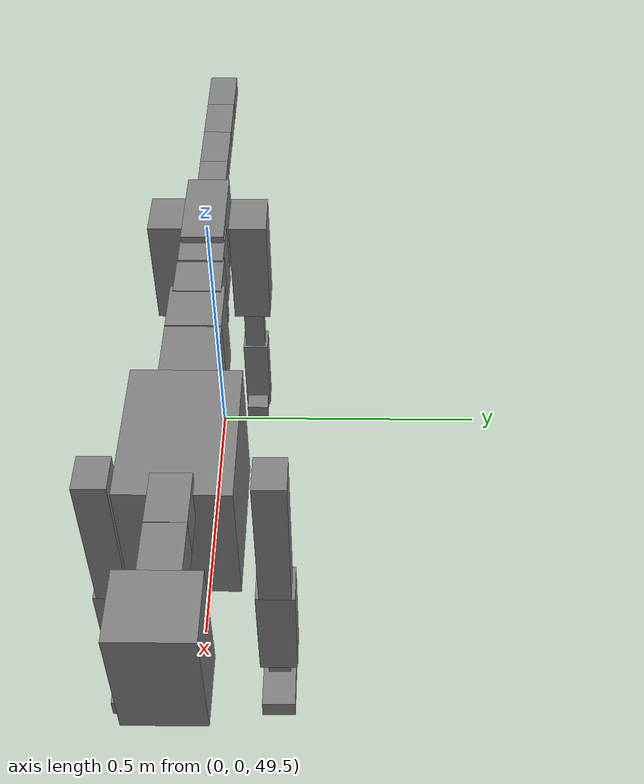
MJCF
<mujoco model="dog">

    <default>
        <joint armature="0.02" stiffness="1" damping="0.2" limited="true"/>
        <geom condim="3" friction="1 0.05 0.05" margin="0.01"/>
        <motor ctrllimited="true" ctrlrange="-1.0 1.0" forcelimited="true" gear="50"/>
    </default>

    <compiler inertiafromgeom="true" angle="radian"/>

    <option timestep="0.016" iterations="50" tolerance="1e-10" solver="Newton" jacobian="dense" cone="pyramidal"/>

    <size nconmax="20000" njmax="60000" nstack="5000000"/>
    <visual>
        <map force="0.1" zfar="30"/>
        <rgba haze="0.15 0.25 0.35 1"/>
        <quality shadowsize="2048"/>
        <global offwidth="800" offheight="800"/>
    </visual>

    <asset>
        <texture type="skybox" builtin="gradient" rgb1="0.3 0.5 0.7" rgb2="0 0 0" width="512" height="512"/>
        <texture name="texplane" type="2d" builtin="checker" rgb1=".2 .3 .4" rgb2=".1 0.15 0.2" width="512" height="512"
                 mark="cross" markrgb=".8 .8 .8"/>
        <texture name="texgeom" type="cube" builtin="flat" mark="cross" width="127" height="1278" rgb1="0.8 0.6 0.4"
                 rgb2="0.8 0.6 0.4" markrgb="1 1 1" random="0.01"/>

        <material name="matplane" reflectance="0.3" texture="texplane" texrepeat="1 1" texuniform="true"/>
        <material name="matgeom" texture="texgeom" texuniform="true" rgba="0.8 0.6 .4 1"/>
    </asset>

    <worldbody>
        <geom name="floor" pos="0 0 0" size="0 0 .25" type="plane" material="matplane" condim="3"/>

        <light directional="false" diffuse=".2 .2 .2" specular="0 0 0" pos="0 0 5" dir="0 0 -1" castshadow="false"/>
        <light mode="targetbodycom" target="torso" directional="false" diffuse=".8 .8 .8" specular="0.3 0.3 0.3"
               pos="0 0 4.0" dir="0 0 -1"/>

        <body name="root" pos="0 0 50">
            <freejoint name="root_1"/>
            <geom type="box" pos="0 0 -0.02" size="0.0774  0.0358  0.063" density="2030"/>

            <body name="spine1" pos="0.054 0 0">
                <joint name="spine1_y" axis="0 1 0" range="0 0.7" limited="true"/>
                <geom type="box" pos="0.02375 0 -0.03" size="0.04375  0.0375  0.05985" density="2030"/>

                <body name="spine2" pos="0.0612 0 0">
                    <joint name="spine2_y" axis="0 1 0" range="-0.15 0.15" limited="true"/>
                    <geom type="box" pos="0.03555  0  -0.04" size="0.04055  0.039  0.06615" density="2030"/>

                    <body name="spine3" pos="0.0730 0 0">
                        <joint name="spine3_y" axis="0 1 0" range="-0.15 0.15" limited="true"/>
                        <geom type="box" pos="0.03555  0  -0.057" size="0.04555  0.0445  0.081" density="2030"/>

                        <body name="spine4" pos="0.0780 0 0">
                            <joint name="spine4_y" axis="0 1 0" range="-0.15 0.15" limited="true"/>
                            <geom type="box" pos="0.05265  0  -0.07" size="0.05265  0.045  0.09135" density="2030"/>

                            <body name="torso" pos="0.1082 0 0">
                                <joint name="torso_y" axis="0 1 0" range="-0.15 0.15" limited="true"/>
                                <geom type="box" pos="0.11925  0  -0.085" size="0.11925  0.085  0.11745"
                                      density="2030"/>

                                <body name="neck1" pos="0.2160  0   0.0180">
                                    <joint name="neck1_y" axis="0 1 0" range="-1.2  -1" limited="true"/>
                                    <geom type="box" pos="0.0423  0  0" size="0.0423  0.03  0.036" density="2325"/>

                                    <body name="neck2" pos="0.0853  0  0">
                                        <joint name="neck2_y" axis="0 1 0" range="0.1  0" limited="true"/>
                                        <geom type="box" pos="0.0423  0  0" size="0.0423  0.03  0.036" density="2325"/>

                                        <body name="head" pos="0.0853  0  0">
                                            <joint name="head_y" axis="0 1 0" range="-0.3  -0.2" limited="true"/>
                                            <geom type="box" pos="0.0531  0  -0.055" size="0.0531  0.06  0.1044"
                                                  density="4030"/>

                                        </body>
                                    </body>
                                </body>

                                <body name="front_shoulder" pos="0.156  0   -0.0480">
                                    <joint name="front_shoulder_y" axis="0 1 0" range="-1 1.5" limited="true"/>
                                    <geom type="box" pos="0 0.13 -0.1270" size="0.0308  0.0263  0.1536" density="1158"/>
                                    <geom type="box" pos="0 -0.13 -0.1270" size="0.0308  0.0263  0.1536"
                                          density="1158"/>

                                    <body name="front_elbow" pos="0  0  -0.2539">
                                        <joint name="front_elbow_y" axis="0 1 0" range="-2 0" limited="true"/>
                                        <geom type="box" pos="0 0.13 -0.1045" size="0.0316  0.0323  0.1045"
                                              density="1081"/>
                                        <geom type="box" pos="0 -0.13 -0.1045" size="0.0316  0.0323  0.1045"
                                              density="1081"/>

                                        <body name="front_wrist" pos="0  0  -0.2089">
                                            <joint name="front_wrist_y" axis="0 1 0" range="-0.2 0" limited="true"/>
                                            <geom type="box" pos="0 0.13 -0.0268" size="0.0172  0.0191  0.0399"
                                                  density="1664"/>
                                            <geom type="box" pos="0 -0.13 -0.0268" size="0.0172  0.0191  0.0399"
                                                  density="1664"/>

                                            <body name="front_finger_end" pos="0  0  -0.0535">
                                                <joint name="front_finger_y" axis="0 1 0" range="-0.4 1"
                                                       limited="true"/>
                                                <geom type="box" pos="0.0284  0.13  -0.0036"
                                                      size="0.0521  0.0284  0.0186" density="1515"/>
                                                <geom type="box" pos="0.0284  -0.13  -0.0036"
                                                      size="0.0521  0.0284  0.0186" density="1515"/>

                                            </body>

                                        </body>
                                    </body>
                                </body>

                            </body>
                        </body>
                    </body>
                </body>
            </body>

            <body name="back_hip" pos="-0.03 0 -0.018">
                <joint name="back_hip_y" axis="0 1 0" range="-1.5 0.3" limited="true"/>
                <geom type="box" pos="0 0.07 -0.0815" size="0.0413  0.0324  0.1043" density="1154"/>
                <geom type="box" pos="0 -0.07 -0.0815" size="0.0413  0.0324  0.1043" density="1154"/>

                <body name="back_knee" pos="0  0  -0.1630">
                    <joint name="back_knee_y" axis="0 1 0" range="0 2.8" limited="true"/>
                    <geom type="box" pos="0 0.07 -0.0667" size="0.0183  0.0180  0.0822" density="1227"/>
                    <geom type="box" pos="0 -0.07 -0.0667" size="0.0183  0.0180  0.0822" density="1227"/>

                    <body name="back_ankle" pos="0  0  -0.1334">
                        <joint name="back_ankle_y" axis="0 1 0" range="-2.2 0" limited="true"/>
                        <geom type="box" pos="0 0.07 -0.0694" size="0.0228  0.0228  0.0807" density="1284"/>
                        <geom type="box" pos="0 -0.07 -0.0694" size="0.0228  0.0228  0.0807" density="1284"/>

                        <body name="back_toe_end" pos="0  0  -0.1389">
                            <joint name="back_toe_y" axis="0 1 0" range="-0.4 1" limited="true"/>
                            <geom type="box" pos="0.0195  0.07  -0.0001" size="0.0357  0.0195  0.0151" density="1515"/>
                            <geom type="box" pos="0.0195  -0.07  -0.0001" size="0.0357  0.0195  0.0151" density="1515"/>

                        </body>
                    </body>
                </body>
            </body>

            <body name="tail1" pos="-0.074 0 -0.006">
                <joint name="tail1_y" axis="0 1 0" range="-0.2 0.2" limited="true"/>
                <geom type="box" pos="-0.0536  0  0" size="0.045  0.025  0.0175" density="1587"/>

                <body name="tail2" pos="-0.09 0 0">
                    <joint name="tail2_y" axis="0 1 0" range="-0.2 0.2" limited="true"/>
                    <geom type="box" pos="-0.0536  0  0" size="0.045  0.025  0.0175" density="1587"/>

                    <body name="tail3" pos="-0.09 0 0">
                        <joint name="tail3_y" axis="0 1 0" range="-0.2 0.2" limited="true"/>
                        <geom type="box" pos="-0.0536  0  0" size="0.045  0.025  0.0175" density="1587"/>

                        <body name="tail4" pos="-0.09 0 0">
                            <joint name="tail4_y" axis="0 1 0" range="-0.2 0.2" limited="true"/>
                            <geom type="box" pos="-0.0536  0  0" size="0.045  0.025  0.0175" density="1587"/>

                        </body>
                    </body>
                </body>
            </body>
        </body>
    </worldbody>

    <actuator>
        <motor joint="spine1_y" forcerange="-150 150     "/>
        <motor joint="spine2_y" forcerange="-150 150     "/>
        <motor joint="spine3_y" forcerange="-150 150     "/>
        <motor joint="spine4_y" forcerange="-150 150     "/>
        <motor joint="torso_y" forcerange="-150 150     "/>
        <motor joint="neck1_y" forcerange="-100 100       "/>
        <motor joint="neck2_y" forcerange="-100 100       "/>
        <motor joint="head_y" forcerange="-150 150       "/>
        <motor joint="front_shoulder_y" forcerange="-139.69 135.59"/>
        <motor joint="front_elbow_y" forcerange="-196.71 138.43"/>
        <motor joint="front_wrist_y" forcerange="-87.21 65.58"/>
        <motor joint="front_finger_y" forcerange="-54.71 56.90"/>
        <motor joint="back_hip_y" forcerange="-247.46 384.33"/>
        <motor joint="back_knee_y" forcerange="-239.16 222.77"/>
        <motor joint="back_angle_y" forcerange="-52.07 212.42"/>
        <motor joint="back_toe_y" forcerange="-41.77 33.83"/>
        <motor joint="tail1_y" forcerange="-50 50     "/>
        <motor joint="tail2_y" forcerange="-50 50     "/>
        <motor joint="tail3_y" forcerange="-50 50     "/>
        <motor joint="tail4_y" forcerange="-50 50     "/>
    </actuator>
</mujoco>
